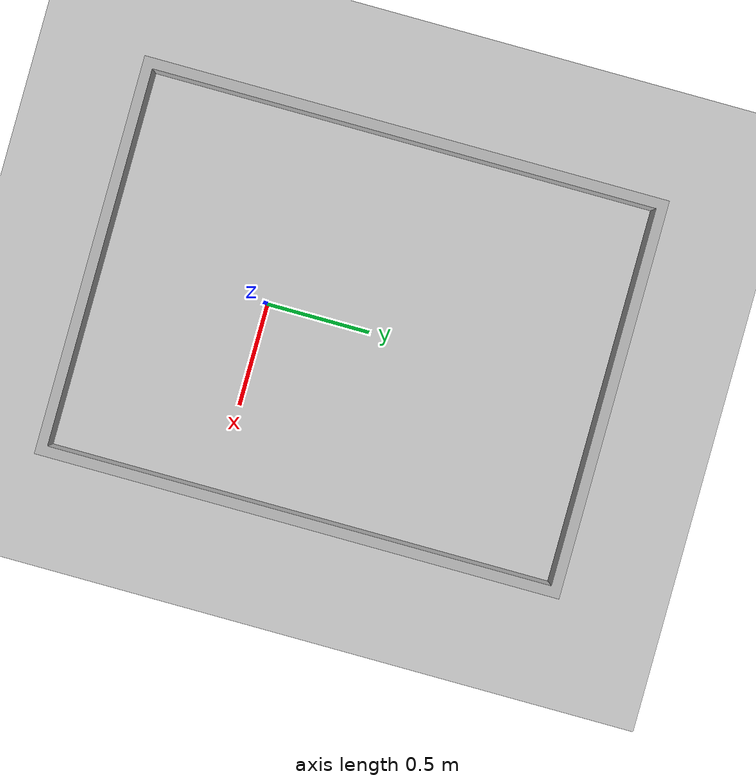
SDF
<?xml version="1.0" ?>
<sdf version="1.6">
  <world name="default">
    <include>
      <uri>model://sun</uri>
    </include>
    <include>
      <uri>model://ground_plane</uri>
    </include>
    <include>
      <uri>model://rcj</uri>
      <static>true</static>
      <pose>-0.91 -0.80 0 0 0 0</pose>
    </include>
  </world>
</sdf>

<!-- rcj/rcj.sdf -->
<sdf version="1.4">
<model name="rcj">
  <pose>0 0 0.5 0 0 0</pose>
    <link name="link">
      <inertial>
        <mass>1.0</mass>
        <inertia>
          <ixx>0.083</ixx>
          <ixy>0.0</ixy>
          <ixz>0.0</ixz>
          <iyy>0.083</iyy>
          <iyz>0.0</iyz>
          <izz>0.083</izz>
        </inertia>
      </inertial>
      <collision name="collision">
        <geometry>
          <mesh>
            <uri>model://rcj/rcj.stl</uri>
          </mesh>
        </geometry>
      </collision>
      <visual name="visual">
        <geometry>
          <mesh>
            <uri>model://rcj/rcj.stl</uri>
          </mesh>
        </geometry>
      </visual>
    </link>
  </model>
</sdf>
